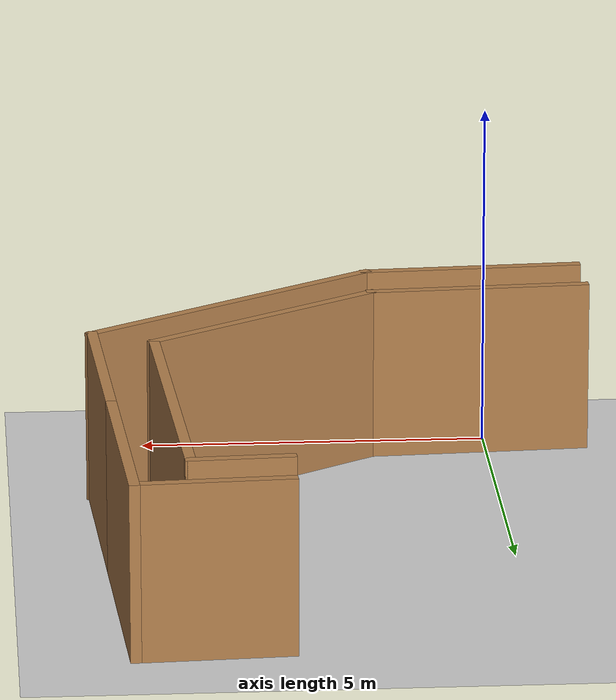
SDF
<sdf version="1.7">
 <world name="default">
  <model name="ground_plane">
   <static>1</static>
   <link name="link">
    <collision name="collision">
     <geometry><plane><normal>0 0 1</normal><size>100 100</size></plane></geometry>
     <surface>
      <contact><collide_bitmask>65535</collide_bitmask></contact>
      <friction><ode><mu>100</mu><mu2>50</mu2></ode></friction>
     </surface>
    </collision>
    <visual name="visual">
     <cast_shadows>0</cast_shadows>
     <geometry><plane><normal>0 0 1</normal><size>100 100</size></plane></geometry>
     <material>
      <script><uri>file://media/materials/scripts/gazebo.material</uri><name>Gazebo/Grey</name></script>
     </material>
    </visual>
   </link>
  </model>
  <light name="sun" type="directional">
   <pose>0 0 10 0 -0 0</pose>
   <diffuse>0.8 0.8 0.8 1</diffuse>
   <specular>0.2 0.2 0.2 1</specular>
   <attenuation>
    <range>1000</range>
    <constant>0.9</constant>
    <linear>0.01</linear>
    <quadratic>0.001</quadratic>
   </attenuation>
   <direction>-0.5 0.1 -0.9</direction>
   <spot><inner_angle>0</inner_angle><outer_angle>0</outer_angle><falloff>0</falloff></spot>
  </light>
  <scene><shadows>0</shadows><ambient>0.4 0.4 0.4 1</ambient><background>0.7 0.7 0.7 1</background></scene>
  <physics type="ode">
   <real_time_update_rate>1000</real_time_update_rate>
   <max_step_size>0.001</max_step_size>
   <real_time_factor>1</real_time_factor>
   <ode>
    <solver>
     <type>quick</type>
     <iters>150</iters>
     <precon_iters>0</precon_iters>
     <sor>1.4</sor>
     <use_dynamic_moi_rescaling>1</use_dynamic_moi_rescaling>
    </solver>
    <constraints>
     <cfm>1e-05</cfm>
     <erp>0.2</erp>
     <contact_max_correcting_vel>2000</contact_max_correcting_vel>
     <contact_surface_layer>0.01</contact_surface_layer>
    </constraints>
   </ode>
  </physics>
  <gravity>0 0 -9.8</gravity>
  <magnetic_field>6e-06 2.3e-05 -4.2e-05</magnetic_field>
  <atmosphere type="adiabatic"/>
  <audio><device>default</device></audio>
  <spherical_coordinates>
   <surface_model>EARTH_WGS84</surface_model>
   <latitude_deg>0</latitude_deg>
   <longitude_deg>0</longitude_deg>
   <elevation>0</elevation>
   <heading_deg>0</heading_deg>
  </spherical_coordinates>
  <model name="maze">
   <pose>2.0328 4.08775 0 0 0 -3.08762</pose>
   <link name="Wall_0">
    <collision name="Wall_0_Collision">
     <geometry><box><size>2.25 0.15 2.5</size></box></geometry>
     <pose>0 0 1.25 0 -0 0</pose>
    </collision>
    <visual name="Wall_0_Visual">
     <pose>0 0 1.25 0 -0 0</pose>
     <geometry><box><size>2.25 0.15 2.5</size></box></geometry>
     <material>
      <script><uri>file://media/materials/scripts/gazebo.material</uri><name>Gazebo/Wood</name></script>
      <ambient>1 1 1 1</ambient>
     </material>
     <meta><layer>0</layer></meta>
    </visual>
    <pose>-2.58638 -4.45123 0 0 -0 3.14159</pose>
   </link>
   <link name="Wall_1">
    <collision name="Wall_1_Collision">
     <geometry><box><size>3.5 0.15 2.5</size></box></geometry>
     <pose>0 0 1.25 0 -0 0</pose>
    </collision>
    <visual name="Wall_1_Visual">
     <pose>0 0 1.25 0 -0 0</pose>
     <geometry><box><size>3.5 0.15 2.5</size></box></geometry>
     <material>
      <script><uri>file://media/materials/scripts/gazebo.material</uri><name>Gazebo/Wood</name></script>
      <ambient>1 1 1 1</ambient>
     </material>
     <meta><layer>0</layer></meta>
    </visual>
    <pose>-3.63639 -2.77623 0 0 -0 1.5708</pose>
   </link>
   <link name="Wall_2">
    <collision name="Wall_2_Collision">
     <geometry><box><size>3.25 0.15 2.5</size></box></geometry>
     <pose>0 0 1.25 0 -0 0</pose>
    </collision>
    <visual name="Wall_2_Visual">
     <pose>0 0 1.25 0 -0 0</pose>
     <geometry><box><size>3.25 0.15 2.5</size></box></geometry>
     <material>
      <script><uri>file://media/materials/scripts/gazebo.material</uri><name>Gazebo/Wood</name></script>
      <ambient>1 1 1 1</ambient>
     </material>
     <meta><layer>0</layer></meta>
    </visual>
    <pose>-3.63639 0.448774 0 0 -0 1.5708</pose>
   </link>
   <link name="Wall_3">
    <collision name="Wall_3_Collision">
     <geometry><box><size>5 0.15 2.5</size></box></geometry>
     <pose>0 0 1.25 0 -0 0</pose>
    </collision>
    <visual name="Wall_3_Visual">
     <pose>0 0 1.25 0 -0 0</pose>
     <geometry><box><size>5 0.15 2.5</size></box></geometry>
     <material>
      <script><uri>file://media/materials/scripts/gazebo.material</uri><name>Gazebo/Wood</name></script>
      <ambient>1 1 1 1</ambient>
     </material>
     <meta><layer>0</layer></meta>
    </visual>
    <pose>-1.53627 3.21127 0 0 -0 0.523599</pose>
   </link>
   <link name="Wall_4">
    <collision name="Wall_4_Collision">
     <geometry><box><size>3.25 0.15 2.5</size></box></geometry>
     <pose>0 0 1.25 0 -0 0</pose>
    </collision>
    <visual name="Wall_4_Visual">
     <pose>0 0 1.25 0 -0 0</pose>
     <geometry><box><size>3.25 0.15 2.5</size></box></geometry>
     <material>
      <script><uri>file://media/materials/scripts/gazebo.material</uri><name>Gazebo/Wood</name></script>
      <ambient>1 1 1 1</ambient>
     </material>
     <meta><layer>0</layer></meta>
    </visual>
    <pose>2.11384 4.42377 0 0 -0 0</pose>
   </link>
   <link name="Wall_6">
    <collision name="Wall_6_Collision">
     <geometry><box><size>1.5 0.15 2.5</size></box></geometry>
     <pose>0 0 1.25 0 -0 0</pose>
    </collision>
    <visual name="Wall_6_Visual">
     <pose>0 0 1.25 0 -0 0</pose>
     <geometry><box><size>1.5 0.15 2.5</size></box></geometry>
     <material>
      <script><uri>file://media/materials/scripts/gazebo.material</uri><name>Gazebo/Wood</name></script>
      <ambient>1 1 1 1</ambient>
     </material>
     <meta><layer>0</layer></meta>
    </visual>
    <pose>-2.12622 -3.5732 0 0 -0 3.14159</pose>
   </link>
   <link name="Wall_7">
    <collision name="Wall_7_Collision">
     <geometry><box><size>5.25 0.15 2.5</size></box></geometry>
     <pose>0 0 1.25 0 -0 0</pose>
    </collision>
    <visual name="Wall_7_Visual">
     <pose>0 0 1.25 0 -0 0</pose>
     <geometry><box><size>5.25 0.15 2.5</size></box></geometry>
     <material>
      <script><uri>file://media/materials/scripts/gazebo.material</uri><name>Gazebo/Wood</name></script>
      <ambient>1 1 1 1</ambient>
     </material>
     <meta><layer>0</layer></meta>
    </visual>
    <pose>-2.80122 -1.0232 0 0 -0 1.5708</pose>
   </link>
   <link name="Wall_8">
    <collision name="Wall_8_Collision">
     <geometry><box><size>4 0.15 2.5</size></box></geometry>
     <pose>0 0 1.25 0 -0 0</pose>
    </collision>
    <visual name="Wall_8_Visual">
     <pose>0 0 1.25 0 -0 0</pose>
     <geometry><box><size>4 0.15 2.5</size></box></geometry>
     <material>
      <script><uri>file://media/materials/scripts/gazebo.material</uri><name>Gazebo/Wood</name></script>
      <ambient>1 1 1 1</ambient>
     </material>
     <meta><layer>0</layer></meta>
    </visual>
    <pose>-1.13413 2.4893 0 0 -0 0.523599</pose>
   </link>
   <link name="Wall_9">
    <collision name="Wall_9_Collision">
     <geometry><box><size>3.25 0.15 2.5</size></box></geometry>
     <pose>0 0 1.25 0 -0 0</pose>
    </collision>
    <visual name="Wall_9_Visual">
     <pose>0 0 1.25 0 -0 0</pose>
     <geometry><box><size>3.25 0.15 2.5</size></box></geometry>
     <material>
      <script><uri>file://media/materials/scripts/gazebo.material</uri><name>Gazebo/Wood</name></script>
      <ambient>1 1 1 1</ambient>
     </material>
     <meta><layer>0</layer></meta>
    </visual>
    <pose>2.08297 3.4518 0 0 -0 0</pose>
   </link>
   <static>1</static>
  </model>
 </world>
</sdf>
